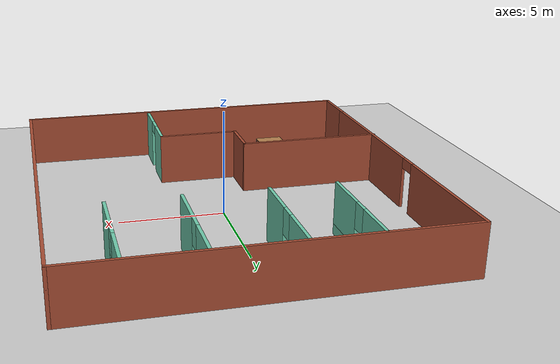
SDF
<sdf version="1.6">
 <world name="default">
  <model name="ground_plane">
   <static>1</static>
   <link name="link">
    <collision name="collision">
     <geometry><plane><normal>0 0 1</normal><size>100 100</size></plane></geometry>
     <surface><friction><ode><mu>100</mu><mu2>50</mu2></ode></friction></surface>
    </collision>
    <visual name="visual">
     <cast_shadows>0</cast_shadows>
     <geometry><plane><normal>0 0 1</normal><size>100 100</size></plane></geometry>
     <material>
      <script><uri>file://media/materials/scripts/gazebo.material</uri><name>Gazebo/Grey</name></script>
     </material>
    </visual>
   </link>
  </model>
  <model name="model">
   <pose>0.00081 -0.243554 0 0 -0 0</pose>
   <link name="Wall_1">
    <pose>-8.52339 1.125 0 0 -0 1.5708</pose>
    <visual name="Wall_1_Visual_0">
     <pose>-3.9165 0 1.25 0 -0 0</pose>
     <geometry><box><size>8.41701 0.15 2.5</size></box></geometry>
     <material>
      <script><uri>file://media/materials/scripts/gazebo.material</uri><name>Gazebo/Bricks</name></script>
      <ambient>1 1 1 1</ambient>
     </material>
    </visual>
    <collision name="Wall_1_Collision_0">
     <geometry><box><size>8.41701 0.15 2.5</size></box></geometry>
     <pose>-3.9165 0 1.25 0 -0 0</pose>
    </collision>
    <visual name="Wall_1_Visual_1">
     <pose>4.6585 0 1.25 0 -0 0</pose>
     <geometry><box><size>6.93299 0.15 2.5</size></box></geometry>
     <material>
      <script><uri>file://media/materials/scripts/gazebo.material</uri><name>Gazebo/Bricks</name></script>
      <ambient>1 1 1 1</ambient>
     </material>
    </visual>
    <collision name="Wall_1_Collision_1">
     <geometry><box><size>6.93299 0.15 2.5</size></box></geometry>
     <pose>4.6585 0 1.25 0 -0 0</pose>
    </collision>
    <visual name="Wall_1_Visual_2">
     <pose>0.742008 0 2.25 0 -0 0</pose>
     <geometry><box><size>0.9 0.15 0.5</size></box></geometry>
     <material>
      <script><uri>file://media/materials/scripts/gazebo.material</uri><name>Gazebo/Bricks</name></script>
      <ambient>1 1 1 1</ambient>
     </material>
    </visual>
    <collision name="Wall_1_Collision_2">
     <geometry><box><size>0.9 0.15 0.5</size></box></geometry>
     <pose>0.742008 0 2.25 0 -0 0</pose>
    </collision>
   </link>
   <link name="Wall_16">
    <pose>-1.20769 6.39462 0 0 -0 1.5708</pose>
    <visual name="Wall_16_Visual_0">
     <pose>-1.59557 0 1.25 0 -0 0</pose>
     <geometry><box><size>2.30886 0.15 2.5</size></box></geometry>
     <material>
      <script><uri>file://media/materials/scripts/gazebo.material</uri><name>Gazebo/Grey</name></script>
      <ambient>0.435294 0.796078 0.67451 1</ambient>
     </material>
    </visual>
    <collision name="Wall_16_Collision_0">
     <geometry><box><size>2.30886 0.15 2.5</size></box></geometry>
     <pose>-1.59557 0 1.25 0 -0 0</pose>
    </collision>
    <visual name="Wall_16_Visual_1">
     <pose>1.15443 0 0.25 0 -0 0</pose>
     <geometry><box><size>3.19114 0.15 0.5</size></box></geometry>
     <material>
      <script><uri>file://media/materials/scripts/gazebo.material</uri><name>Gazebo/Grey</name></script>
      <ambient>0.435294 0.796078 0.67451 1</ambient>
     </material>
    </visual>
    <collision name="Wall_16_Collision_1">
     <geometry><box><size>3.19114 0.15 0.5</size></box></geometry>
     <pose>1.15443 0 0.25 0 -0 0</pose>
    </collision>
    <visual name="Wall_16_Visual_2">
     <pose>1.55443 0 1.5 0 -0 0</pose>
     <geometry><box><size>2.39114 0.15 2</size></box></geometry>
     <material>
      <script><uri>file://media/materials/scripts/gazebo.material</uri><name>Gazebo/Grey</name></script>
      <ambient>0.435294 0.796078 0.67451 1</ambient>
     </material>
    </visual>
    <collision name="Wall_16_Collision_2">
     <geometry><box><size>2.39114 0.15 2</size></box></geometry>
     <pose>1.55443 0 1.5 0 -0 0</pose>
    </collision>
    <visual name="Wall_16_Visual_3">
     <pose>-0.04114 0 1.9 0 -0 0</pose>
     <geometry><box><size>0.8 0.15 1.2</size></box></geometry>
     <material>
      <script><uri>file://media/materials/scripts/gazebo.material</uri><name>Gazebo/Grey</name></script>
      <ambient>0.435294 0.796078 0.67451 1</ambient>
     </material>
    </visual>
    <collision name="Wall_16_Collision_3">
     <geometry><box><size>0.8 0.15 1.2</size></box></geometry>
     <pose>-0.04114 0 1.9 0 -0 0</pose>
    </collision>
   </link>
   <link name="Wall_19">
    <pose>2.63286 6.35372 0 0 -0 1.5708</pose>
    <visual name="Wall_19_Visual_0">
     <pose>-1.50436 0 1.25 0 -0 0</pose>
     <geometry><box><size>2.49128 0.15 2.5</size></box></geometry>
     <material>
      <script><uri>file://media/materials/scripts/gazebo.material</uri><name>Gazebo/Grey</name></script>
      <ambient>0.435294 0.796078 0.67451 1</ambient>
     </material>
    </visual>
    <collision name="Wall_19_Collision_0">
     <geometry><box><size>2.49128 0.15 2.5</size></box></geometry>
     <pose>-1.50436 0 1.25 0 -0 0</pose>
    </collision>
    <visual name="Wall_19_Visual_1">
     <pose>1.24564 0 0.25 0 -0 0</pose>
     <geometry><box><size>3.00872 0.15 0.5</size></box></geometry>
     <material>
      <script><uri>file://media/materials/scripts/gazebo.material</uri><name>Gazebo/Grey</name></script>
      <ambient>0.435294 0.796078 0.67451 1</ambient>
     </material>
    </visual>
    <collision name="Wall_19_Collision_1">
     <geometry><box><size>3.00872 0.15 0.5</size></box></geometry>
     <pose>1.24564 0 0.25 0 -0 0</pose>
    </collision>
    <visual name="Wall_19_Visual_2">
     <pose>1.64564 0 1.5 0 -0 0</pose>
     <geometry><box><size>2.20872 0.15 2</size></box></geometry>
     <material>
      <script><uri>file://media/materials/scripts/gazebo.material</uri><name>Gazebo/Grey</name></script>
      <ambient>0.435294 0.796078 0.67451 1</ambient>
     </material>
    </visual>
    <collision name="Wall_19_Collision_2">
     <geometry><box><size>2.20872 0.15 2</size></box></geometry>
     <pose>1.64564 0 1.5 0 -0 0</pose>
    </collision>
    <visual name="Wall_19_Visual_3">
     <pose>0.141276 0 1.9 0 -0 0</pose>
     <geometry><box><size>0.8 0.15 1.2</size></box></geometry>
     <material>
      <script><uri>file://media/materials/scripts/gazebo.material</uri><name>Gazebo/Grey</name></script>
      <ambient>0.435294 0.796078 0.67451 1</ambient>
     </material>
    </visual>
    <collision name="Wall_19_Collision_3">
     <geometry><box><size>0.8 0.15 1.2</size></box></geometry>
     <pose>0.141276 0 1.9 0 -0 0</pose>
    </collision>
   </link>
   <link name="Wall_2">
    <collision name="Wall_2_Collision">
     <geometry><box><size>17.25 0.15 2.5</size></box></geometry>
     <pose>0 0 1.25 0 -0 0</pose>
    </collision>
    <visual name="Wall_2_Visual">
     <pose>0 0 1.25 0 -0 0</pose>
     <geometry><box><size>17.25 0.15 2.5</size></box></geometry>
     <material>
      <script><uri>file://media/materials/scripts/gazebo.material</uri><name>Gazebo/Bricks</name></script>
      <ambient>1 1 1 1</ambient>
     </material>
    </visual>
    <pose>0.026614 9.175 0 0 -0 0</pose>
   </link>
   <link name="Wall_21">
    <pose>5.9336 6.40832 0 0 -0 1.5708</pose>
    <visual name="Wall_21_Visual_0">
     <pose>-1.53166 0 1.25 0 -0 0</pose>
     <geometry><box><size>2.43667 0.15 2.5</size></box></geometry>
     <material>
      <script><uri>file://media/materials/scripts/gazebo.material</uri><name>Gazebo/Grey</name></script>
      <ambient>0.435294 0.796078 0.67451 1</ambient>
     </material>
    </visual>
    <collision name="Wall_21_Collision_0">
     <geometry><box><size>2.43667 0.15 2.5</size></box></geometry>
     <pose>-1.53166 0 1.25 0 -0 0</pose>
    </collision>
    <visual name="Wall_21_Visual_1">
     <pose>1.21834 0 0.25 0 -0 0</pose>
     <geometry><box><size>3.06333 0.15 0.5</size></box></geometry>
     <material>
      <script><uri>file://media/materials/scripts/gazebo.material</uri><name>Gazebo/Grey</name></script>
      <ambient>0.435294 0.796078 0.67451 1</ambient>
     </material>
    </visual>
    <collision name="Wall_21_Collision_1">
     <geometry><box><size>3.06333 0.15 0.5</size></box></geometry>
     <pose>1.21834 0 0.25 0 -0 0</pose>
    </collision>
    <visual name="Wall_21_Visual_2">
     <pose>1.61834 0 1.5 0 -0 0</pose>
     <geometry><box><size>2.26333 0.15 2</size></box></geometry>
     <material>
      <script><uri>file://media/materials/scripts/gazebo.material</uri><name>Gazebo/Grey</name></script>
      <ambient>0.435294 0.796078 0.67451 1</ambient>
     </material>
    </visual>
    <collision name="Wall_21_Collision_2">
     <geometry><box><size>2.26333 0.15 2</size></box></geometry>
     <pose>1.61834 0 1.5 0 -0 0</pose>
    </collision>
    <visual name="Wall_21_Visual_3">
     <pose>0.086671 0 1.9 0 -0 0</pose>
     <geometry><box><size>0.8 0.15 1.2</size></box></geometry>
     <material>
      <script><uri>file://media/materials/scripts/gazebo.material</uri><name>Gazebo/Grey</name></script>
      <ambient>0.435294 0.796078 0.67451 1</ambient>
     </material>
    </visual>
    <collision name="Wall_21_Collision_3">
     <geometry><box><size>0.8 0.15 1.2</size></box></geometry>
     <pose>0.086671 0 1.9 0 -0 0</pose>
    </collision>
   </link>
   <link name="Wall_23">
    <collision name="Wall_23_Collision">
     <geometry><box><size>7 0.15 2.5</size></box></geometry>
     <pose>0 0 1.25 0 -0 0</pose>
    </collision>
    <visual name="Wall_23_Visual">
     <pose>0 0 1.25 0 -0 0</pose>
     <geometry><box><size>7 0.15 2.5</size></box></geometry>
     <material>
      <script><uri>file://media/materials/scripts/gazebo.material</uri><name>Gazebo/Bricks</name></script>
      <ambient>1 1 1 1</ambient>
     </material>
    </visual>
    <pose>-5.15161 -2.44563 0 0 -0 0</pose>
   </link>
   <link name="Wall_24">
    <collision name="Wall_24_Collision">
     <geometry><box><size>2.25 0.15 2.5</size></box></geometry>
     <pose>0 0 1.25 0 -0 0</pose>
    </collision>
    <visual name="Wall_24_Visual">
     <pose>0 0 1.25 0 -0 0</pose>
     <geometry><box><size>2.25 0.15 2.5</size></box></geometry>
     <material>
      <script><uri>file://media/materials/scripts/gazebo.material</uri><name>Gazebo/Bricks</name></script>
      <ambient>1 1 1 1</ambient>
     </material>
    </visual>
    <pose>-1.72662 -3.49564 0 0 0 -1.5708</pose>
   </link>
   <link name="Wall_25">
    <collision name="Wall_25_Collision">
     <geometry><box><size>4 0.15 2.5</size></box></geometry>
     <pose>0 0 1.25 0 -0 0</pose>
    </collision>
    <visual name="Wall_25_Visual">
     <pose>0 0 1.25 0 -0 0</pose>
     <geometry><box><size>4 0.15 2.5</size></box></geometry>
     <material>
      <script><uri>file://media/materials/scripts/gazebo.material</uri><name>Gazebo/Bricks</name></script>
      <ambient>1 1 1 1</ambient>
     </material>
    </visual>
    <pose>0.198385 -4.54563 0 0 -0 0</pose>
   </link>
   <link name="Wall_26">
    <pose>2.12338 -6.72063 0 0 0 -1.5708</pose>
    <visual name="Wall_26_Visual_0">
     <pose>-1.29049 0 1.25 0 -0 0</pose>
     <geometry><box><size>1.91901 0.15 2.5</size></box></geometry>
     <material>
      <script><uri>file://media/materials/scripts/gazebo.material</uri><name>Gazebo/Grey</name></script>
      <ambient>0.435294 0.796078 0.67451 1</ambient>
     </material>
    </visual>
    <collision name="Wall_26_Collision_0">
     <geometry><box><size>1.91901 0.15 2.5</size></box></geometry>
     <pose>-1.29049 0 1.25 0 -0 0</pose>
    </collision>
    <visual name="Wall_26_Visual_1">
     <pose>1.40951 0 1.25 0 -0 0</pose>
     <geometry><box><size>1.68099 0.15 2.5</size></box></geometry>
     <material>
      <script><uri>file://media/materials/scripts/gazebo.material</uri><name>Gazebo/Grey</name></script>
      <ambient>0.435294 0.796078 0.67451 1</ambient>
     </material>
    </visual>
    <collision name="Wall_26_Collision_1">
     <geometry><box><size>1.68099 0.15 2.5</size></box></geometry>
     <pose>1.40951 0 1.25 0 -0 0</pose>
    </collision>
    <visual name="Wall_26_Visual_2">
     <pose>0.119013 0 2.25 0 -0 0</pose>
     <geometry><box><size>0.9 0.15 0.5</size></box></geometry>
     <material>
      <script><uri>file://media/materials/scripts/gazebo.material</uri><name>Gazebo/Grey</name></script>
      <ambient>0.435294 0.796078 0.67451 1</ambient>
     </material>
    </visual>
    <collision name="Wall_26_Collision_2">
     <geometry><box><size>0.9 0.15 0.5</size></box></geometry>
     <pose>0.119013 0 2.25 0 -0 0</pose>
    </collision>
   </link>
   <link name="Wall_3">
    <collision name="Wall_3_Collision">
     <geometry><box><size>18.5 0.15 2.5</size></box></geometry>
     <pose>0 0 1.25 0 -0 0</pose>
    </collision>
    <visual name="Wall_3_Visual">
     <pose>0 0 1.25 0 -0 0</pose>
     <geometry><box><size>18.5 0.15 2.5</size></box></geometry>
     <material>
      <script><uri>file://media/materials/scripts/gazebo.material</uri><name>Gazebo/Bricks</name></script>
      <ambient>1 1 1 1</ambient>
     </material>
    </visual>
    <pose>8.57661 0 0 0 0 -1.5708</pose>
   </link>
   <link name="Wall_4">
    <collision name="Wall_4_Collision">
     <geometry><box><size>17.25 0.15 2.5</size></box></geometry>
     <pose>0 0 1.25 0 -0 0</pose>
    </collision>
    <visual name="Wall_4_Visual">
     <pose>0 0 1.25 0 -0 0</pose>
     <geometry><box><size>17.25 0.15 2.5</size></box></geometry>
     <material>
      <script><uri>file://media/materials/scripts/gazebo.material</uri><name>Gazebo/Bricks</name></script>
      <ambient>1 1 1 1</ambient>
     </material>
    </visual>
    <pose>0.026614 -9.175 0 0 -0 3.14159</pose>
   </link>
   <link name="Wall_5">
    <collision name="Wall_5_Collision">
     <geometry><box><size>2.5 0.15 2.5</size></box></geometry>
     <pose>0 0 1.25 0 -0 0</pose>
    </collision>
    <visual name="Wall_5_Visual">
     <pose>0 0 1.25 0 -0 0</pose>
     <geometry><box><size>2.5 0.15 2.5</size></box></geometry>
     <material>
      <script><uri>file://media/materials/scripts/gazebo.material</uri><name>Gazebo/Bricks</name></script>
      <ambient>1 1 1 1</ambient>
     </material>
    </visual>
    <pose>-8.52339 -8 0 0 -0 1.5708</pose>
   </link>
   <link name="Wall_7">
    <pose>-4.29529 6.41213 0 0 0 -1.5708</pose>
    <visual name="Wall_7_Visual_0">
     <pose>-1.61643 0 1.25 0 -0 0</pose>
     <geometry><box><size>2.26714 0.15 2.5</size></box></geometry>
     <material>
      <script><uri>file://media/materials/scripts/gazebo.material</uri><name>Gazebo/Grey</name></script>
      <ambient>0.435294 0.796078 0.67451 1</ambient>
     </material>
    </visual>
    <collision name="Wall_7_Collision_0">
     <geometry><box><size>2.26714 0.15 2.5</size></box></geometry>
     <pose>-1.61643 0 1.25 0 -0 0</pose>
    </collision>
    <visual name="Wall_7_Visual_1">
     <pose>1.13357 0 0.25 0 -0 0</pose>
     <geometry><box><size>3.23286 0.15 0.5</size></box></geometry>
     <material>
      <script><uri>file://media/materials/scripts/gazebo.material</uri><name>Gazebo/Grey</name></script>
      <ambient>0.435294 0.796078 0.67451 1</ambient>
     </material>
    </visual>
    <collision name="Wall_7_Collision_1">
     <geometry><box><size>3.23286 0.15 0.5</size></box></geometry>
     <pose>1.13357 0 0.25 0 -0 0</pose>
    </collision>
    <visual name="Wall_7_Visual_2">
     <pose>1.53357 0 1.5 0 -0 0</pose>
     <geometry><box><size>2.43286 0.15 2</size></box></geometry>
     <material>
      <script><uri>file://media/materials/scripts/gazebo.material</uri><name>Gazebo/Grey</name></script>
      <ambient>0.435294 0.796078 0.67451 1</ambient>
     </material>
    </visual>
    <collision name="Wall_7_Collision_2">
     <geometry><box><size>2.43286 0.15 2</size></box></geometry>
     <pose>1.53357 0 1.5 0 -0 0</pose>
    </collision>
    <visual name="Wall_7_Visual_3">
     <pose>-0.082863 0 1.9 0 -0 0</pose>
     <geometry><box><size>0.8 0.15 1.2</size></box></geometry>
     <material>
      <script><uri>file://media/materials/scripts/gazebo.material</uri><name>Gazebo/Grey</name></script>
      <ambient>0.435294 0.796078 0.67451 1</ambient>
     </material>
    </visual>
    <collision name="Wall_7_Collision_3">
     <geometry><box><size>0.8 0.15 1.2</size></box></geometry>
     <pose>-0.082863 0 1.9 0 -0 0</pose>
    </collision>
   </link>
   <static>1</static>
  </model>
  <model name="table">
   <static>0</static>
   <link name="link">
    <collision name="surface">
     <pose>0 0 1 0 -0 0</pose>
     <geometry><box><size>1.5 0.8 0.03</size></box></geometry>
     <surface><friction><ode><mu>0.6</mu><mu2>0.6</mu2></ode></friction></surface>
    </collision>
    <visual name="visual1">
     <pose>0 0 1 0 -0 0</pose>
     <geometry><box><size>1.4 0.8 0.04</size></box></geometry>
     <material>
      <script><uri>file://media/materials/scripts/gazebo.material</uri><name>Gazebo/Wood</name></script>
     </material>
    </visual>
    <collision name="front_left_leg">
     <pose>0.68 0.38 0.5 0 -0 0</pose>
     <geometry><cylinder><radius>0.02</radius><length>1</length></cylinder></geometry>
    </collision>
    <visual name="front_left_leg">
     <pose>0.68 0.38 0.5 0 -0 0</pose>
     <geometry><cylinder><radius>0.02</radius><length>1</length></cylinder></geometry>
     <material>
      <script><uri>file://media/materials/scripts/gazebo.material</uri><name>Gazebo/Grey</name></script>
     </material>
    </visual>
    <collision name="front_right_leg">
     <pose>0.68 -0.38 0.5 0 -0 0</pose>
     <geometry><cylinder><radius>0.02</radius><length>1</length></cylinder></geometry>
    </collision>
    <visual name="front_right_leg">
     <pose>0.68 -0.38 0.5 0 -0 0</pose>
     <geometry><cylinder><radius>0.02</radius><length>1</length></cylinder></geometry>
     <material>
      <script><uri>file://media/materials/scripts/gazebo.material</uri><name>Gazebo/Grey</name></script>
     </material>
    </visual>
    <collision name="back_right_leg">
     <pose>-0.68 -0.38 0.5 0 -0 0</pose>
     <geometry><cylinder><radius>0.02</radius><length>1</length></cylinder></geometry>
    </collision>
    <visual name="back_right_leg">
     <pose>-0.68 -0.38 0.5 0 -0 0</pose>
     <geometry><cylinder><radius>0.02</radius><length>1</length></cylinder></geometry>
     <material>
      <script><uri>file://media/materials/scripts/gazebo.material</uri><name>Gazebo/Grey</name></script>
     </material>
    </visual>
    <collision name="back_left_leg">
     <pose>-0.68 0.38 0.5 0 -0 0</pose>
     <geometry><cylinder><radius>0.02</radius><length>1</length></cylinder></geometry>
    </collision>
    <visual name="back_left_leg">
     <pose>-0.68 0.38 0.5 0 -0 0</pose>
     <geometry><cylinder><radius>0.02</radius><length>1</length></cylinder></geometry>
     <material>
      <script><uri>file://media/materials/scripts/gazebo.material</uri><name>Gazebo/Grey</name></script>
     </material>
    </visual>
    <inertial>
     <inertia><ixx>1</ixx><ixy>0</ixy><ixz>0</ixz><iyy>1</iyy><iyz>0</iyz><izz>1</izz></inertia>
     <mass>1</mass>
    </inertial>
   </link>
   <pose>-6.72601 -4.07623 -1e-06 1e-06 -0 0</pose>
  </model>
  <model name="table_3">
   <static>0</static>
   <link name="link">
    <collision name="surface">
     <pose>0 0 1 0 -0 0</pose>
     <geometry><box><size>1.5 0.8 0.03</size></box></geometry>
     <surface><friction><ode><mu>0.6</mu><mu2>0.6</mu2></ode></friction></surface>
    </collision>
    <visual name="visual1">
     <pose>0 0 1 0 -0 0</pose>
     <geometry><box><size>1.4 0.8 0.04</size></box></geometry>
     <material>
      <script><uri>file://media/materials/scripts/gazebo.material</uri><name>Gazebo/Wood</name></script>
     </material>
    </visual>
    <collision name="front_left_leg">
     <pose>0.68 0.38 0.5 0 -0 0</pose>
     <geometry><cylinder><radius>0.02</radius><length>1</length></cylinder></geometry>
    </collision>
    <visual name="front_left_leg">
     <pose>0.68 0.38 0.5 0 -0 0</pose>
     <geometry><cylinder><radius>0.02</radius><length>1</length></cylinder></geometry>
     <material>
      <script><uri>file://media/materials/scripts/gazebo.material</uri><name>Gazebo/Grey</name></script>
     </material>
    </visual>
    <collision name="front_right_leg">
     <pose>0.68 -0.38 0.5 0 -0 0</pose>
     <geometry><cylinder><radius>0.02</radius><length>1</length></cylinder></geometry>
    </collision>
    <visual name="front_right_leg">
     <pose>0.68 -0.38 0.5 0 -0 0</pose>
     <geometry><cylinder><radius>0.02</radius><length>1</length></cylinder></geometry>
     <material>
      <script><uri>file://media/materials/scripts/gazebo.material</uri><name>Gazebo/Grey</name></script>
     </material>
    </visual>
    <collision name="back_right_leg">
     <pose>-0.68 -0.38 0.5 0 -0 0</pose>
     <geometry><cylinder><radius>0.02</radius><length>1</length></cylinder></geometry>
    </collision>
    <visual name="back_right_leg">
     <pose>-0.68 -0.38 0.5 0 -0 0</pose>
     <geometry><cylinder><radius>0.02</radius><length>1</length></cylinder></geometry>
     <material>
      <script><uri>file://media/materials/scripts/gazebo.material</uri><name>Gazebo/Grey</name></script>
     </material>
    </visual>
    <collision name="back_left_leg">
     <pose>-0.68 0.38 0.5 0 -0 0</pose>
     <geometry><cylinder><radius>0.02</radius><length>1</length></cylinder></geometry>
    </collision>
    <visual name="back_left_leg">
     <pose>-0.68 0.38 0.5 0 -0 0</pose>
     <geometry><cylinder><radius>0.02</radius><length>1</length></cylinder></geometry>
     <material>
      <script><uri>file://media/materials/scripts/gazebo.material</uri><name>Gazebo/Grey</name></script>
     </material>
    </visual>
    <inertial>
     <inertia><ixx>1</ixx><ixy>0</ixy><ixz>0</ixz><iyy>1</iyy><iyz>0</iyz><izz>1</izz></inertia>
     <mass>1</mass>
    </inertial>
   </link>
   <pose>-6.30009 6.70076 -1e-06 1e-06 -0 0</pose>
  </model>
  <model name="table_4">
   <static>0</static>
   <link name="link">
    <collision name="surface">
     <pose>0 0 1 0 -0 0</pose>
     <geometry><box><size>1.5 0.8 0.03</size></box></geometry>
     <surface><friction><ode><mu>0.6</mu><mu2>0.6</mu2></ode></friction></surface>
    </collision>
    <visual name="visual1">
     <pose>0 0 1 0 -0 0</pose>
     <geometry><box><size>1.4 0.8 0.04</size></box></geometry>
     <material>
      <script><uri>file://media/materials/scripts/gazebo.material</uri><name>Gazebo/Wood</name></script>
     </material>
    </visual>
    <collision name="front_left_leg">
     <pose>0.68 0.38 0.5 0 -0 0</pose>
     <geometry><cylinder><radius>0.02</radius><length>1</length></cylinder></geometry>
    </collision>
    <visual name="front_left_leg">
     <pose>0.68 0.38 0.5 0 -0 0</pose>
     <geometry><cylinder><radius>0.02</radius><length>1</length></cylinder></geometry>
     <material>
      <script><uri>file://media/materials/scripts/gazebo.material</uri><name>Gazebo/Grey</name></script>
     </material>
    </visual>
    <collision name="front_right_leg">
     <pose>0.68 -0.38 0.5 0 -0 0</pose>
     <geometry><cylinder><radius>0.02</radius><length>1</length></cylinder></geometry>
    </collision>
    <visual name="front_right_leg">
     <pose>0.68 -0.38 0.5 0 -0 0</pose>
     <geometry><cylinder><radius>0.02</radius><length>1</length></cylinder></geometry>
     <material>
      <script><uri>file://media/materials/scripts/gazebo.material</uri><name>Gazebo/Grey</name></script>
     </material>
    </visual>
    <collision name="back_right_leg">
     <pose>-0.68 -0.38 0.5 0 -0 0</pose>
     <geometry><cylinder><radius>0.02</radius><length>1</length></cylinder></geometry>
    </collision>
    <visual name="back_right_leg">
     <pose>-0.68 -0.38 0.5 0 -0 0</pose>
     <geometry><cylinder><radius>0.02</radius><length>1</length></cylinder></geometry>
     <material>
      <script><uri>file://media/materials/scripts/gazebo.material</uri><name>Gazebo/Grey</name></script>
     </material>
    </visual>
    <collision name="back_left_leg">
     <pose>-0.68 0.38 0.5 0 -0 0</pose>
     <geometry><cylinder><radius>0.02</radius><length>1</length></cylinder></geometry>
    </collision>
    <visual name="back_left_leg">
     <pose>-0.68 0.38 0.5 0 -0 0</pose>
     <geometry><cylinder><radius>0.02</radius><length>1</length></cylinder></geometry>
     <material>
      <script><uri>file://media/materials/scripts/gazebo.material</uri><name>Gazebo/Grey</name></script>
     </material>
    </visual>
    <inertial>
     <inertia><ixx>1</ixx><ixy>0</ixy><ixz>0</ixz><iyy>1</iyy><iyz>0</iyz><izz>1</izz></inertia>
     <mass>1</mass>
    </inertial>
   </link>
   <pose>-2.72787 6.79229 -9e-06 0 -1e-06 0</pose>
  </model>
  <model name="table_5">
   <static>0</static>
   <link name="link">
    <collision name="surface">
     <pose>0 0 1 0 -0 0</pose>
     <geometry><box><size>1.5 0.8 0.03</size></box></geometry>
     <surface><friction><ode><mu>0.6</mu><mu2>0.6</mu2></ode></friction></surface>
    </collision>
    <visual name="visual1">
     <pose>0 0 1 0 -0 0</pose>
     <geometry><box><size>1.4 0.8 0.04</size></box></geometry>
     <material>
      <script><uri>file://media/materials/scripts/gazebo.material</uri><name>Gazebo/Wood</name></script>
     </material>
    </visual>
    <collision name="front_left_leg">
     <pose>0.68 0.38 0.5 0 -0 0</pose>
     <geometry><cylinder><radius>0.02</radius><length>1</length></cylinder></geometry>
    </collision>
    <visual name="front_left_leg">
     <pose>0.68 0.38 0.5 0 -0 0</pose>
     <geometry><cylinder><radius>0.02</radius><length>1</length></cylinder></geometry>
     <material>
      <script><uri>file://media/materials/scripts/gazebo.material</uri><name>Gazebo/Grey</name></script>
     </material>
    </visual>
    <collision name="front_right_leg">
     <pose>0.68 -0.38 0.5 0 -0 0</pose>
     <geometry><cylinder><radius>0.02</radius><length>1</length></cylinder></geometry>
    </collision>
    <visual name="front_right_leg">
     <pose>0.68 -0.38 0.5 0 -0 0</pose>
     <geometry><cylinder><radius>0.02</radius><length>1</length></cylinder></geometry>
     <material>
      <script><uri>file://media/materials/scripts/gazebo.material</uri><name>Gazebo/Grey</name></script>
     </material>
    </visual>
    <collision name="back_right_leg">
     <pose>-0.68 -0.38 0.5 0 -0 0</pose>
     <geometry><cylinder><radius>0.02</radius><length>1</length></cylinder></geometry>
    </collision>
    <visual name="back_right_leg">
     <pose>-0.68 -0.38 0.5 0 -0 0</pose>
     <geometry><cylinder><radius>0.02</radius><length>1</length></cylinder></geometry>
     <material>
      <script><uri>file://media/materials/scripts/gazebo.material</uri><name>Gazebo/Grey</name></script>
     </material>
    </visual>
    <collision name="back_left_leg">
     <pose>-0.68 0.38 0.5 0 -0 0</pose>
     <geometry><cylinder><radius>0.02</radius><length>1</length></cylinder></geometry>
    </collision>
    <visual name="back_left_leg">
     <pose>-0.68 0.38 0.5 0 -0 0</pose>
     <geometry><cylinder><radius>0.02</radius><length>1</length></cylinder></geometry>
     <material>
      <script><uri>file://media/materials/scripts/gazebo.material</uri><name>Gazebo/Grey</name></script>
     </material>
    </visual>
    <inertial>
     <inertia><ixx>1</ixx><ixy>0</ixy><ixz>0</ixz><iyy>1</iyy><iyz>0</iyz><izz>1</izz></inertia>
     <mass>1</mass>
    </inertial>
   </link>
   <pose>0.684066 6.70645 -1e-06 1e-06 -0 0</pose>
  </model>
  <model name="table_6">
   <static>0</static>
   <link name="link">
    <collision name="surface">
     <pose>0 0 1 0 -0 0</pose>
     <geometry><box><size>1.5 0.8 0.03</size></box></geometry>
     <surface><friction><ode><mu>0.6</mu><mu2>0.6</mu2></ode></friction></surface>
    </collision>
    <visual name="visual1">
     <pose>0 0 1 0 -0 0</pose>
     <geometry><box><size>1.4 0.8 0.04</size></box></geometry>
     <material>
      <script><uri>file://media/materials/scripts/gazebo.material</uri><name>Gazebo/Wood</name></script>
     </material>
    </visual>
    <collision name="front_left_leg">
     <pose>0.68 0.38 0.5 0 -0 0</pose>
     <geometry><cylinder><radius>0.02</radius><length>1</length></cylinder></geometry>
    </collision>
    <visual name="front_left_leg">
     <pose>0.68 0.38 0.5 0 -0 0</pose>
     <geometry><cylinder><radius>0.02</radius><length>1</length></cylinder></geometry>
     <material>
      <script><uri>file://media/materials/scripts/gazebo.material</uri><name>Gazebo/Grey</name></script>
     </material>
    </visual>
    <collision name="front_right_leg">
     <pose>0.68 -0.38 0.5 0 -0 0</pose>
     <geometry><cylinder><radius>0.02</radius><length>1</length></cylinder></geometry>
    </collision>
    <visual name="front_right_leg">
     <pose>0.68 -0.38 0.5 0 -0 0</pose>
     <geometry><cylinder><radius>0.02</radius><length>1</length></cylinder></geometry>
     <material>
      <script><uri>file://media/materials/scripts/gazebo.material</uri><name>Gazebo/Grey</name></script>
     </material>
    </visual>
    <collision name="back_right_leg">
     <pose>-0.68 -0.38 0.5 0 -0 0</pose>
     <geometry><cylinder><radius>0.02</radius><length>1</length></cylinder></geometry>
    </collision>
    <visual name="back_right_leg">
     <pose>-0.68 -0.38 0.5 0 -0 0</pose>
     <geometry><cylinder><radius>0.02</radius><length>1</length></cylinder></geometry>
     <material>
      <script><uri>file://media/materials/scripts/gazebo.material</uri><name>Gazebo/Grey</name></script>
     </material>
    </visual>
    <collision name="back_left_leg">
     <pose>-0.68 0.38 0.5 0 -0 0</pose>
     <geometry><cylinder><radius>0.02</radius><length>1</length></cylinder></geometry>
    </collision>
    <visual name="back_left_leg">
     <pose>-0.68 0.38 0.5 0 -0 0</pose>
     <geometry><cylinder><radius>0.02</radius><length>1</length></cylinder></geometry>
     <material>
      <script><uri>file://media/materials/scripts/gazebo.material</uri><name>Gazebo/Grey</name></script>
     </material>
    </visual>
    <inertial>
     <inertia><ixx>1</ixx><ixy>0</ixy><ixz>0</ixz><iyy>1</iyy><iyz>0</iyz><izz>1</izz></inertia>
     <mass>1</mass>
    </inertial>
   </link>
   <pose>4.48968 6.88802 -9e-06 0 -0 0</pose>
  </model>
  <model name="table_7">
   <static>0</static>
   <link name="link">
    <collision name="surface">
     <pose>0 0 1 0 -0 0</pose>
     <geometry><box><size>1.5 0.8 0.03</size></box></geometry>
     <surface><friction><ode><mu>0.6</mu><mu2>0.6</mu2></ode></friction></surface>
    </collision>
    <visual name="visual1">
     <pose>0 0 1 0 -0 0</pose>
     <geometry><box><size>1.4 0.8 0.04</size></box></geometry>
     <material>
      <script><uri>file://media/materials/scripts/gazebo.material</uri><name>Gazebo/Wood</name></script>
     </material>
    </visual>
    <collision name="front_left_leg">
     <pose>0.68 0.38 0.5 0 -0 0</pose>
     <geometry><cylinder><radius>0.02</radius><length>1</length></cylinder></geometry>
    </collision>
    <visual name="front_left_leg">
     <pose>0.68 0.38 0.5 0 -0 0</pose>
     <geometry><cylinder><radius>0.02</radius><length>1</length></cylinder></geometry>
     <material>
      <script><uri>file://media/materials/scripts/gazebo.material</uri><name>Gazebo/Grey</name></script>
     </material>
    </visual>
    <collision name="front_right_leg">
     <pose>0.68 -0.38 0.5 0 -0 0</pose>
     <geometry><cylinder><radius>0.02</radius><length>1</length></cylinder></geometry>
    </collision>
    <visual name="front_right_leg">
     <pose>0.68 -0.38 0.5 0 -0 0</pose>
     <geometry><cylinder><radius>0.02</radius><length>1</length></cylinder></geometry>
     <material>
      <script><uri>file://media/materials/scripts/gazebo.material</uri><name>Gazebo/Grey</name></script>
     </material>
    </visual>
    <collision name="back_right_leg">
     <pose>-0.68 -0.38 0.5 0 -0 0</pose>
     <geometry><cylinder><radius>0.02</radius><length>1</length></cylinder></geometry>
    </collision>
    <visual name="back_right_leg">
     <pose>-0.68 -0.38 0.5 0 -0 0</pose>
     <geometry><cylinder><radius>0.02</radius><length>1</length></cylinder></geometry>
     <material>
      <script><uri>file://media/materials/scripts/gazebo.material</uri><name>Gazebo/Grey</name></script>
     </material>
    </visual>
    <collision name="back_left_leg">
     <pose>-0.68 0.38 0.5 0 -0 0</pose>
     <geometry><cylinder><radius>0.02</radius><length>1</length></cylinder></geometry>
    </collision>
    <visual name="back_left_leg">
     <pose>-0.68 0.38 0.5 0 -0 0</pose>
     <geometry><cylinder><radius>0.02</radius><length>1</length></cylinder></geometry>
     <material>
      <script><uri>file://media/materials/scripts/gazebo.material</uri><name>Gazebo/Grey</name></script>
     </material>
    </visual>
    <inertial>
     <inertia><ixx>1</ixx><ixy>0</ixy><ixz>0</ixz><iyy>1</iyy><iyz>0</iyz><izz>1</izz></inertia>
     <mass>1</mass>
    </inertial>
   </link>
   <pose>-4.42412 -7.37585 -9e-06 0 -1e-06 0</pose>
  </model>
 </world>
</sdf>
